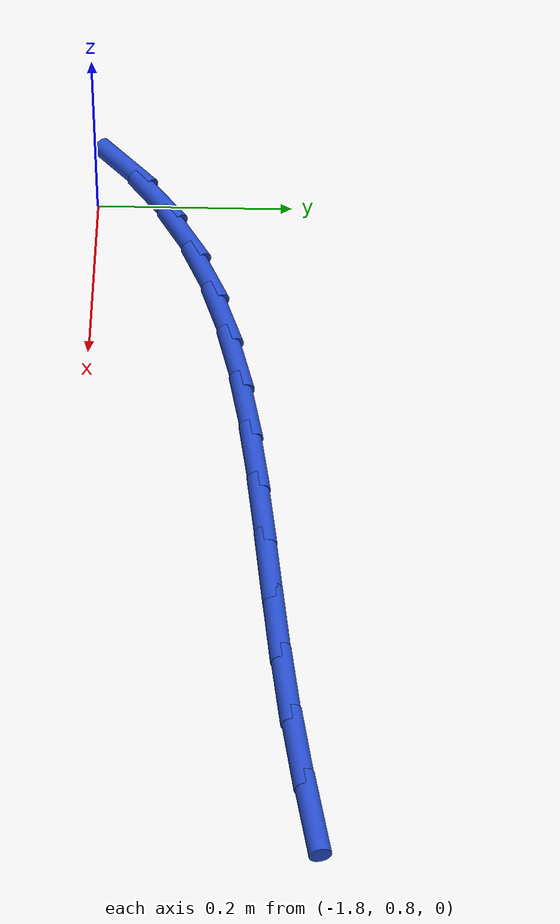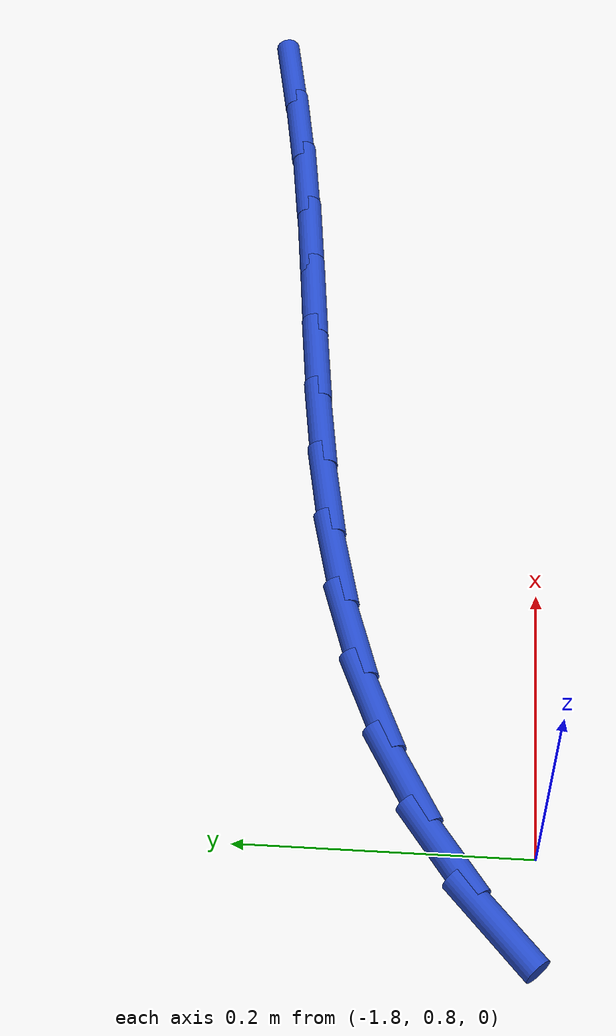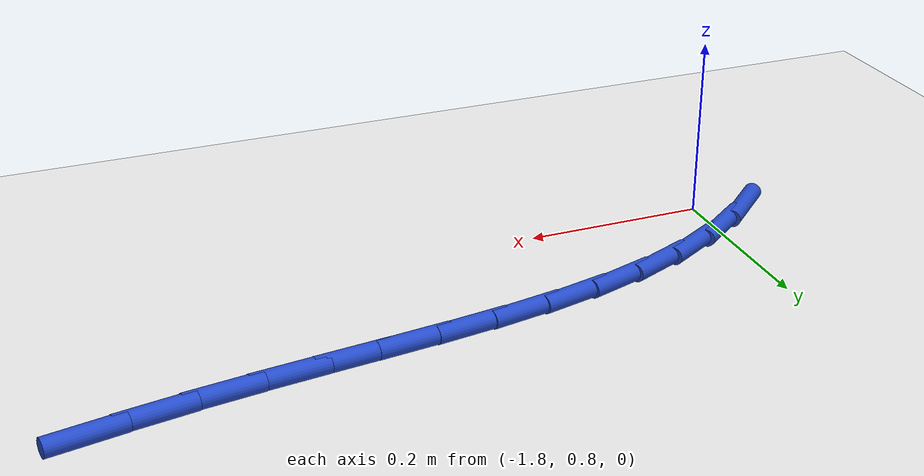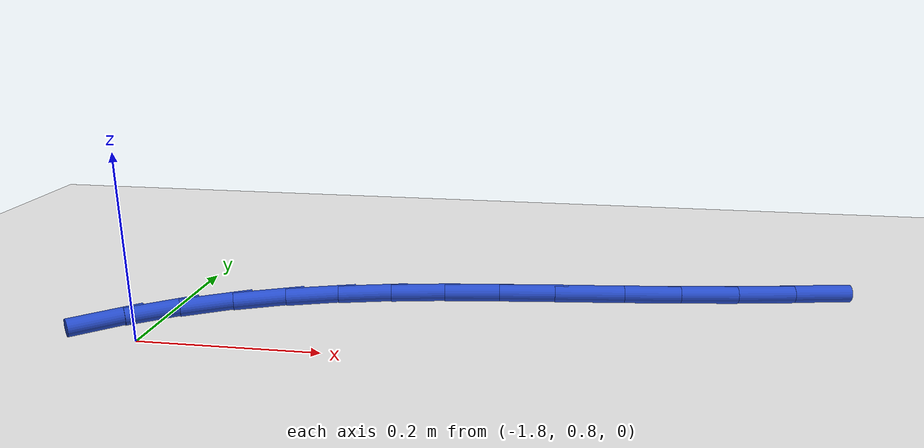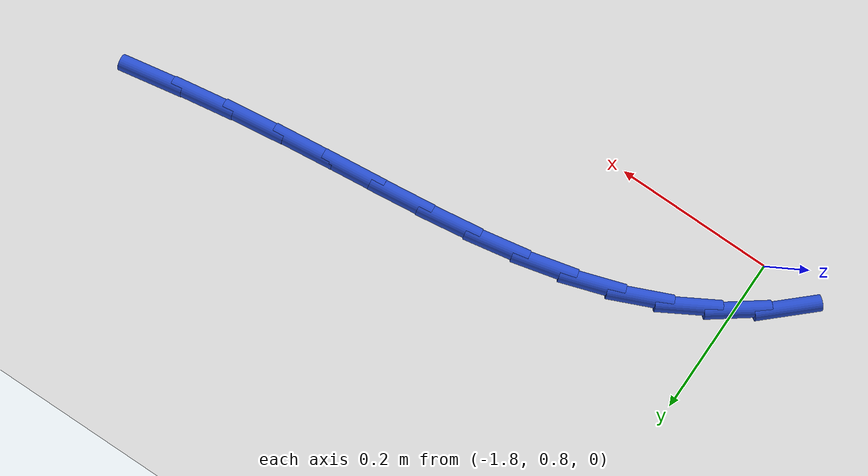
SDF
<sdf version="1.6">
 <world name="default">
  <model name="ground_plane">
   <static>1</static>
   <link name="link">
    <collision name="collision">
     <geometry><plane><normal>0 0 1</normal><size>100 100</size></plane></geometry>
     <surface><friction><ode><mu>100</mu><mu2>50</mu2></ode></friction></surface>
    </collision>
    <visual name="visual">
     <cast_shadows>0</cast_shadows>
     <geometry><plane><normal>0 0 1</normal><size>100 100</size></plane></geometry>
     <material>
      <script><uri>file://media/materials/scripts/gazebo.material</uri><name>Gazebo/WhiteGlow</name></script>
     </material>
    </visual>
   </link>
  </model>
  <model name="line">
   <link name="link_28">
    <pose>-1.0762816034508482 1.0183531533148555 0.01 0 1.57 0.1820026280130686</pose>
    <collision name="collision">
     <geometry><cylinder><radius>0.01</radius><length>0.08</length></cylinder></geometry>
    </collision>
    <visual name="visual">
     <material>
      <script><name>Gazebo/Blue</name><uri>file://media/materials/scripts/gazebo.material</uri></script>
     </material>
     <geometry><cylinder><radius>0.01</radius><length>0.08</length></cylinder></geometry>
    </visual>
   </link>
   <link name="link_29">
    <pose>-1.140971304074463 1.0064477108240855 0.01 0 1.57 0.16072051520069078</pose>
    <collision name="collision">
     <geometry><cylinder><radius>0.01</radius><length>0.08</length></cylinder></geometry>
    </collision>
    <visual name="visual">
     <material>
      <script><name>Gazebo/Blue</name><uri>file://media/materials/scripts/gazebo.material</uri></script>
     </material>
     <geometry><cylinder><radius>0.01</radius><length>0.08</length></cylinder></geometry>
    </visual>
   </link>
   <link name="link_30">
    <pose>-1.2058756031715652 0.9959255020099218 0.01 0 1.57 0.13210691719067427</pose>
    <collision name="collision">
     <geometry><cylinder><radius>0.01</radius><length>0.08</length></cylinder></geometry>
    </collision>
    <visual name="visual">
     <material>
      <script><name>Gazebo/Blue</name><uri>file://media/materials/scripts/gazebo.material</uri></script>
     </material>
     <geometry><cylinder><radius>0.01</radius><length>0.08</length></cylinder></geometry>
    </visual>
   </link>
   <link name="link_31">
    <pose>-1.270725347058626 0.9873082135195511 0.01 0 1.57 0.11429594194510122</pose>
    <collision name="collision">
     <geometry><cylinder><radius>0.01</radius><length>0.08</length></cylinder></geometry>
    </collision>
    <visual name="visual">
     <material>
      <script><name>Gazebo/Blue</name><uri>file://media/materials/scripts/gazebo.material</uri></script>
     </material>
     <geometry><cylinder><radius>0.01</radius><length>0.08</length></cylinder></geometry>
    </visual>
   </link>
   <link name="link_32">
    <pose>-1.3352133603070468 0.9799052307490072 0.01 0 1.57 0.10999877492996599</pose>
    <collision name="collision">
     <geometry><cylinder><radius>0.01</radius><length>0.08</length></cylinder></geometry>
    </collision>
    <visual name="visual">
     <material>
      <script><name>Gazebo/Blue</name><uri>file://media/materials/scripts/gazebo.material</uri></script>
     </material>
     <geometry><cylinder><radius>0.01</radius><length>0.08</length></cylinder></geometry>
    </visual>
   </link>
   <link name="link_33">
    <pose>-1.3990271796667968 0.9728573399800949 0.01 0 1.57 0.11962902546438586</pose>
    <collision name="collision">
     <geometry><cylinder><radius>0.01</radius><length>0.08</length></cylinder></geometry>
    </collision>
    <visual name="visual">
     <material>
      <script><name>Gazebo/Blue</name><uri>file://media/materials/scripts/gazebo.material</uri></script>
     </material>
     <geometry><cylinder><radius>0.01</radius><length>0.08</length></cylinder></geometry>
    </visual>
   </link>
   <link name="link_34">
    <pose>-1.4618543418878445 0.9653053274946201 0.01 0 1.57 0.14389743938662014</pose>
    <collision name="collision">
     <geometry><cylinder><radius>0.01</radius><length>0.08</length></cylinder></geometry>
    </collision>
    <visual name="visual">
     <material>
      <script><name>Gazebo/Blue</name><uri>file://media/materials/scripts/gazebo.material</uri></script>
     </material>
     <geometry><cylinder><radius>0.01</radius><length>0.08</length></cylinder></geometry>
    </visual>
   </link>
   <link name="link_35">
    <pose>-1.5233823837201583 0.9563899795743872 0.01 0 1.57 0.18379260688147323</pose>
    <collision name="collision">
     <geometry><cylinder><radius>0.01</radius><length>0.08</length></cylinder></geometry>
    </collision>
    <visual name="visual">
     <material>
      <script><name>Gazebo/Blue</name><uri>file://media/materials/scripts/gazebo.material</uri></script>
     </material>
     <geometry><cylinder><radius>0.01</radius><length>0.08</length></cylinder></geometry>
    </visual>
   </link>
   <link name="link_36">
    <pose>-1.5832988419137062 0.9452520825012016 0.01 0 1.57 0.24045464885963333</pose>
    <collision name="collision">
     <geometry><cylinder><radius>0.01</radius><length>0.08</length></cylinder></geometry>
    </collision>
    <visual name="visual">
     <material>
      <script><name>Gazebo/Blue</name><uri>file://media/materials/scripts/gazebo.material</uri></script>
     </material>
     <geometry><cylinder><radius>0.01</radius><length>0.08</length></cylinder></geometry>
    </visual>
   </link>
   <link name="link_37">
    <pose>-1.641291253218458 0.9310324225568687 0.01 0 1.57 0.31488012930779885</pose>
    <collision name="collision">
     <geometry><cylinder><radius>0.01</radius><length>0.08</length></cylinder></geometry>
    </collision>
    <visual name="visual">
     <material>
      <script><name>Gazebo/Blue</name><uri>file://media/materials/scripts/gazebo.material</uri></script>
     </material>
     <geometry><cylinder><radius>0.01</radius><length>0.08</length></cylinder></geometry>
    </visual>
   </link>
   <link name="link_38">
    <pose>-1.6970471543843808 0.912871786023193 0.01 0 1.57 0.4073955811938982</pose>
    <collision name="collision">
     <geometry><cylinder><radius>0.01</radius><length>0.08</length></cylinder></geometry>
    </collision>
    <visual name="visual">
     <material>
      <script><name>Gazebo/Blue</name><uri>file://media/materials/scripts/gazebo.material</uri></script>
     </material>
     <geometry><cylinder><radius>0.01</radius><length>0.08</length></cylinder></geometry>
    </visual>
   </link>
   <link name="link_39">
    <pose>-1.7502540821614438 0.8899109591819798 0.01 0 1.57 0.5169062451272561</pose>
    <collision name="collision">
     <geometry><cylinder><radius>0.01</radius><length>0.08</length></cylinder></geometry>
    </collision>
    <visual name="visual">
     <material>
      <script><name>Gazebo/Blue</name><uri>file://media/materials/scripts/gazebo.material</uri></script>
     </material>
     <geometry><cylinder><radius>0.01</radius><length>0.08</length></cylinder></geometry>
    </visual>
   </link>
   <link name="link_40">
    <pose>-1.8005997016224706 0.8612914324776012 0.01 0 1.57 0.6343323801162736</pose>
    <collision name="collision">
     <geometry><cylinder><radius>0.01</radius><length>0.08</length></cylinder></geometry>
    </collision>
    <visual name="visual">
     <material>
      <script><name>Gazebo/Blue</name><uri>file://media/materials/scripts/gazebo.material</uri></script>
     </material>
     <geometry><cylinder><radius>0.01</radius><length>0.08</length></cylinder></geometry>
    </visual>
   </link>
   <link name="link_41">
    <pose>-1.8478406053213756 0.8265329310194489 0.01 0 1.57 0.7416322217299293</pose>
    <collision name="collision">
     <geometry><cylinder><radius>0.01</radius><length>0.08</length></cylinder></geometry>
    </collision>
    <visual name="visual">
     <material>
      <script><name>Gazebo/Blue</name><uri>file://media/materials/scripts/gazebo.material</uri></script>
     </material>
     <geometry><cylinder><radius>0.01</radius><length>0.08</length></cylinder></geometry>
    </visual>
   </link>
  </model>
 </world>
</sdf>
